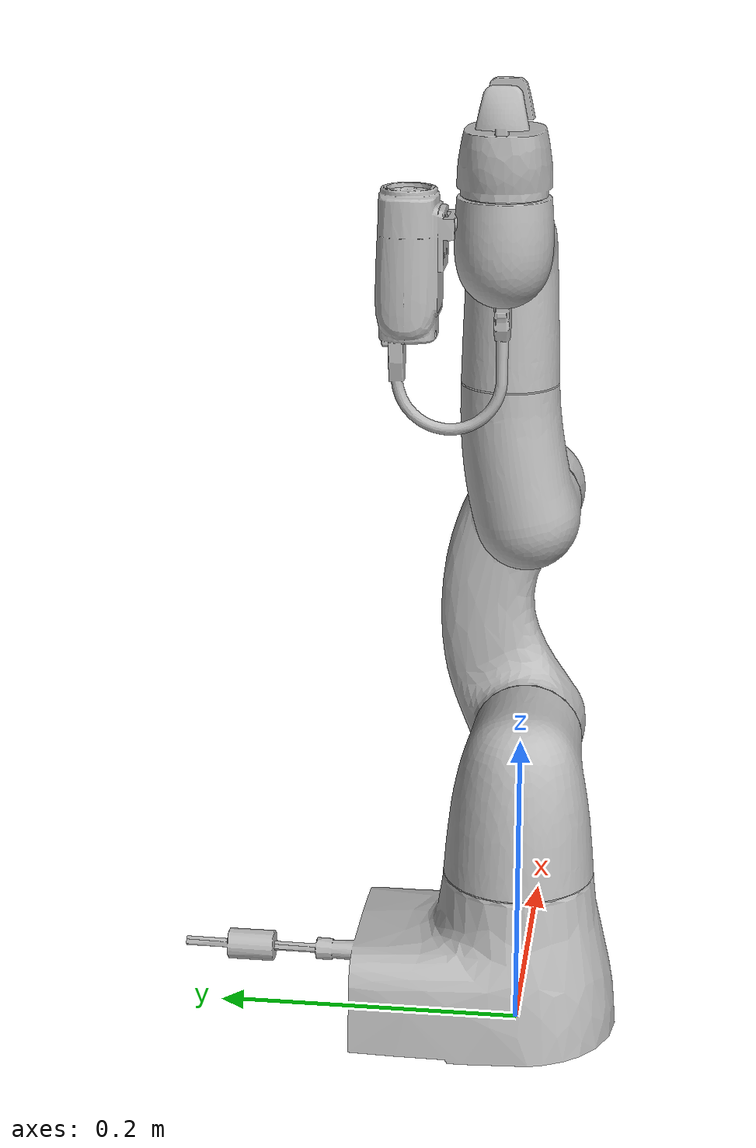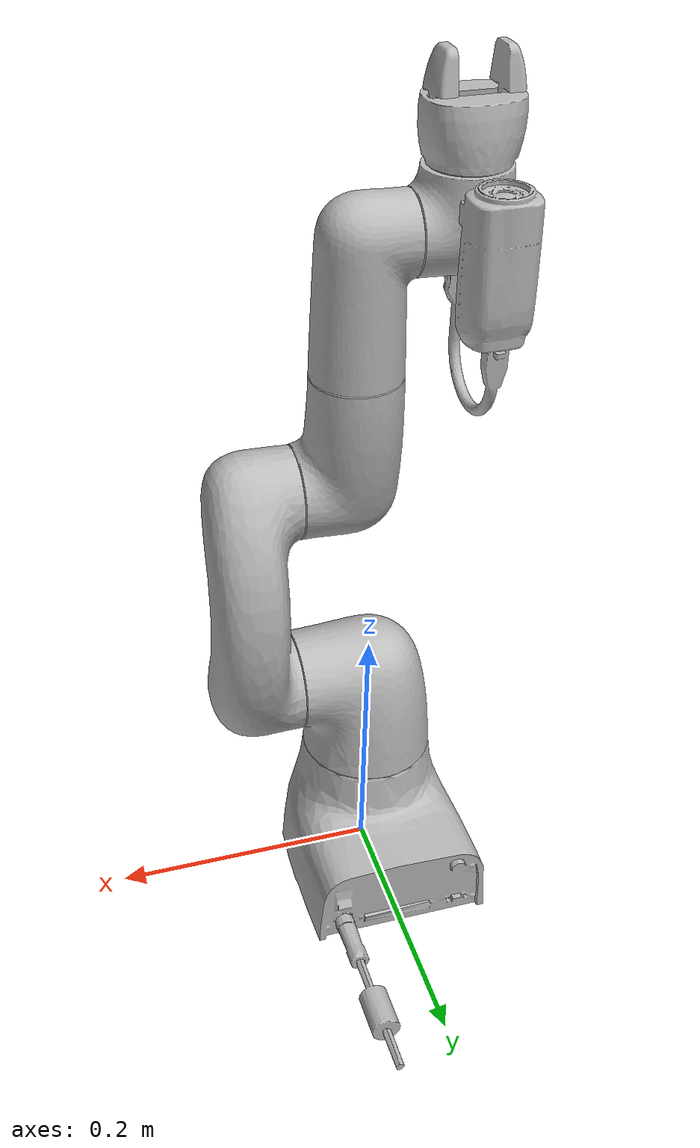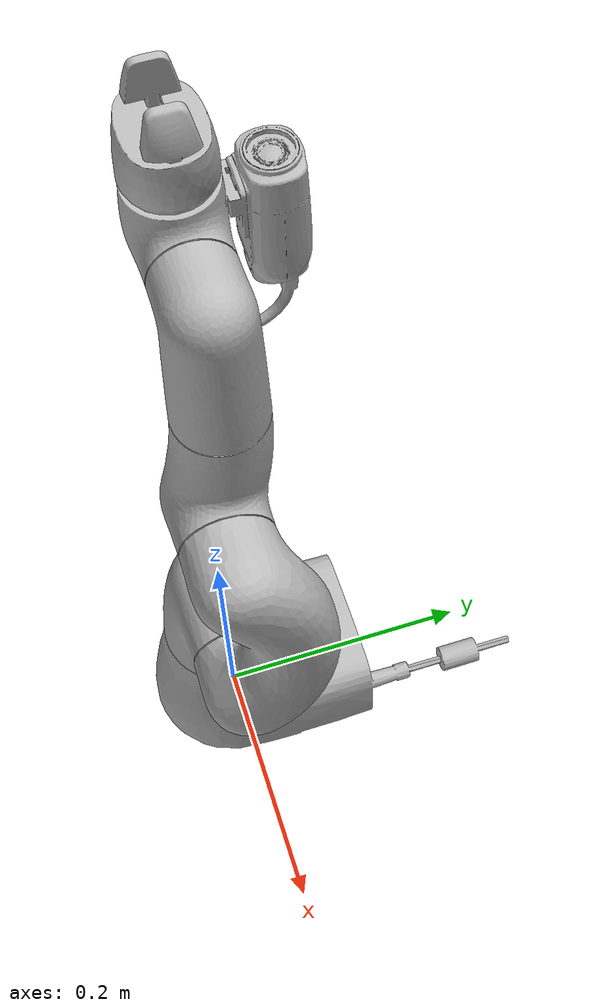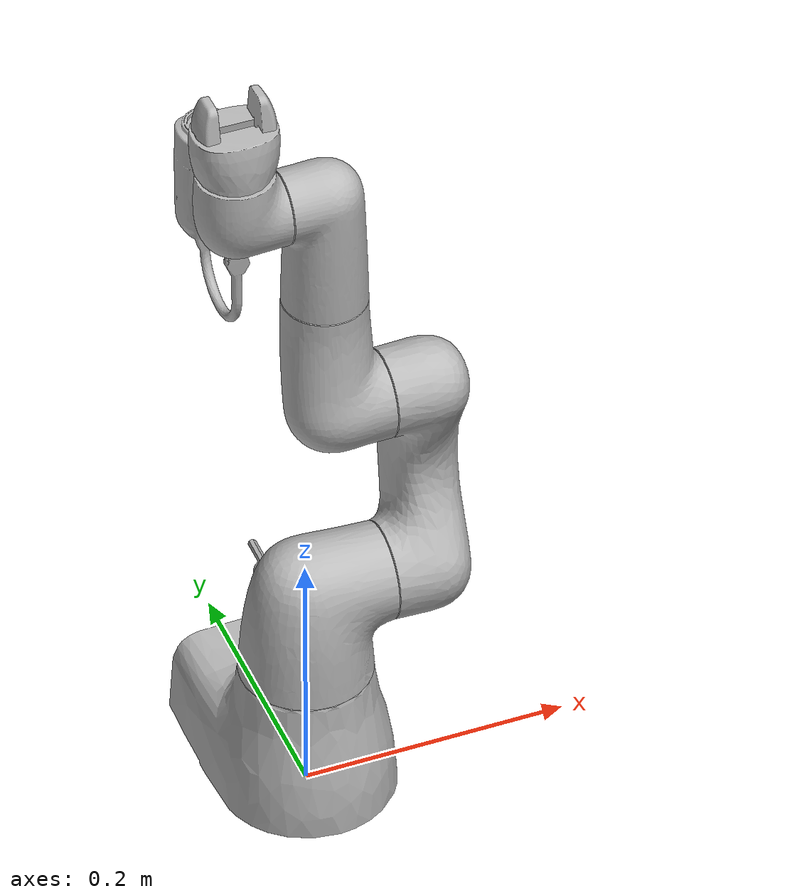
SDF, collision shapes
<?xml version="1.0" ?>
<sdf version='1.11'>
<model name='Cobotta'>
    <!-- * la base è stata fissata al mondo in modo che non possa muoversi -->
    <joint name="base_fixed" type="fixed">
    <parent>world</parent>
    <child>link_root</child>
    </joint>
    <!-- link_root -->
    <link name='link_root'>
        <inertial>
            <pose>0.00056 0.0223 0.04527 0 -0 0</pose>
            <mass>1.5781582461079724</mass>
            <inertia>
                <ixx>0.002994</ixx>
                <ixy>2e-06</ixy>
                <ixz>-0.000325</ixz>
                <iyy>0.004044</iyy>
                <iyz>1e-06</iyz>
                <izz>0.00462</izz>
            </inertia>
        </inertial>
        <collision name='link_root_fixed_joint_lump__base_collision_collision'>
            <pose>0 0 0 1.5708 -0 0</pose>
            <geometry>
            <mesh>
                <uri>file://meshes/coll/base.dae</uri>
                <scale>1 1 1</scale>
            </mesh>
            </geometry>
            <surface>
                <contact>
                    <ode>
                        <kp>1000000.0</kp>
                        <kd>100.0</kd>
                        <max_vel>1.0</max_vel>
                        <min_depth>0.001</min_depth>
                    </ode>
                </contact>
                <friction>
                    <ode>
                        <mu>0.2</mu>
                        <mu2>0.2</mu2>
                    </ode>
                </friction>
            </surface>
        </collision>
        <visual name='link_root_fixed_joint_lump__base_visual'>
            <pose>0 0 0 1.5708 -0 0</pose>
            <geometry>
            <mesh>
                <scale>1 1 1</scale>
                <uri>file://meshes/dae/base.dae</uri>
            </mesh>
            </geometry>
        </visual>
    </link>
    <!-- joint1 -->
    <joint name='joint1' type='revolute'>
    <pose relative_to='link_root'>0 0 0.108 0 -0 0</pose>
    <parent>link_root</parent>
    <child>link_j1</child>
    <axis>
        <xyz>0 0 1</xyz>
        <limit>
            <effort>100</effort>
            <velocity>1.62490153360672</velocity>
            <lower>-2.61799387799149</lower>
            <upper>2.61799387799149</upper>
        </limit>
        <dynamics>
            <spring_reference>0</spring_reference>
            <spring_stiffness>0</spring_stiffness>
            <damping>6.0</damping>
            <friction>0.1</friction>
        </dynamics>
    </axis>
    </joint>
    <!-- link_j1 -->
    <link name='link_j1'>
    <pose relative_to='joint1'>0 0 0 0 -0 0</pose>
    <inertial>
        <pose>0.00668 0 0.04965 0 -0 0</pose>
        <mass>0.7006266882863252</mass>
        <inertia>
            <ixx>0.001062</ixx>
            <ixy>-0.0</ixy>
            <ixz>-0.0</ixz>
            <iyy>0.000935</iyy>
            <iyz>-0.000116</iyz>
            <izz>0.000791</izz>
        </inertia>
    </inertial>
    <collision name='link_j1_fixed_joint_lump__j2_collision_collision'>
        <pose>0 0 -0.108 1.5708 -0 0</pose>
        <geometry>
        <mesh>
            <scale>1 1 1</scale>
            <uri>file://meshes/coll/j2.dae</uri>
        </mesh>
        </geometry>
            <surface>
            <contact>
                <ode>
                    <kp>1000000.0</kp>
                    <kd>100.0</kd>
                    <max_vel>1.0</max_vel>
                    <min_depth>0.001</min_depth>
                </ode>
            </contact>
            <friction>
                <ode>
                    <mu>0.2</mu>
                    <mu2>0.2</mu2>
                </ode>
            </friction>
        </surface>
    </collision>
    <visual name='link_j1_fixed_joint_lump__j2_visual'>
        <pose>0 0 -0.108 1.5708 -0 0</pose>
        <geometry>
        <mesh>
            <scale>1 1 1</scale>
            <uri>file://meshes/dae/j2.dae</uri>
        </mesh>
        </geometry>
    </visual>
    </link>
    <!-- joint2 -->
    <joint name='joint2' type='revolute'>
    <pose relative_to='link_j1'>0.062 0 0.072 3.14159 1.57079 3.14159</pose>
    <parent>link_j1</parent>
    <child>link_j2</child>
    <axis>
        <xyz>0 0 1</xyz>
        <limit>
            <effort>100</effort>
            <velocity>0.759226951263793</velocity>
            <lower>-1.0471975511966</lower>
            <upper>1.74532925199433</upper>
        </limit>
        <dynamics>
            <spring_reference>0</spring_reference>
            <spring_stiffness>0</spring_stiffness>
            <damping>7.0</damping>
            <friction>0.1</friction>
        </dynamics>
    </axis>
    </joint>
    <!-- link_j2 -->
    <link name='link_j2'>
    <pose relative_to='joint2'>0 0 0 0 -0 0</pose>
    <inertial>
        <pose>-0.07592 0.02475 0.03838 0 -0 0</pose>
        <mass>0.7962111154190773</mass>
        <inertia>
            <ixx>0.003728</ixx>
            <ixy>5.6e-05</ixy>
            <ixz>5.4e-05</ixz>
            <iyy>0.003891</iyy>
            <iyz>-3.2e-05</iyz>
            <izz>0.000591</izz>
        </inertia>
    </inertial>
    <collision name='link_j2_fixed_joint_lump__j1Starm_collision_collision'>
        <pose>0.18 0 -0.062 1.5708 -1.5708 0</pose>
        <geometry>
        <mesh>
            <scale>1 1 1</scale>
            <uri>file://meshes/coll/j1Starm.dae</uri>
        </mesh>
        </geometry>
            <surface>
            <contact>
                <ode>
                    <kp>1000000.0</kp>
                    <kd>100.0</kd>
                    <max_vel>1.0</max_vel>
                    <min_depth>0.001</min_depth>
                </ode>
            </contact>
            <friction>
                <ode>
                    <mu>0.2</mu>
                    <mu2>0.2</mu2>
                </ode>
            </friction>
        </surface>
    </collision>
    <visual name='link_j2_fixed_joint_lump__j1Starm_visual'>
        <pose>0.18 0 -0.062 1.5708 -1.5708 0</pose>
        <geometry>
        <mesh>
            <scale>1 1 1</scale>
            <uri>file://meshes/dae/j1Starm.dae</uri>
        </mesh>
        </geometry>
    </visual>
    </link>
    <!-- joint3 -->
    <joint name='joint3' type='revolute'>
    <pose relative_to='link_j2'>-0.165 0 0 3.14159 -0 3.14159</pose>
    <parent>link_j2</parent>
    <child>link_j3</child>
    <axis>
        <xyz>0 0 -1</xyz>
        <limit>
            <effort>100</effort>
            <velocity>1.66187633381022</velocity>
            <lower>0.314159265358979</lower>
            <upper>2.44346095279206</upper>
        </limit>
        <dynamics>
            <spring_reference>0</spring_reference>
            <spring_stiffness>0</spring_stiffness>
            <damping>5.0</damping>
            <friction>0.1</friction>
        </dynamics>
    </axis>
    </joint>
    <!-- link_j3 -->
    <link name='link_j3'>
    <pose relative_to='joint3'>0 0 0 0 0 1.57</pose>
    <inertial>
        <pose>0.00526 -0.02675 0.03861 0 -0 0</pose>
        <mass>0.40840408613020135</mass>
        <inertia>
            <ixx>0.00025</ixx>
            <ixy>4.1e-05</ixy>
            <ixz>-5.9e-05</ixz>
            <iyy>0.00054</iyy>
            <iyz>8e-06</iyz>
            <izz>0.000553</izz>
        </inertia>
    </inertial>
    <collision name='link_j3_fixed_joint_lump__j34_collision_collision'>
        <pose>-0.345 0 0.062 1.5708 1.5708 0</pose>
        <geometry>
        <mesh>
            <scale>1 1 1</scale>
            <uri>file://meshes/coll/j34.dae</uri>
        </mesh>
        </geometry>
            <surface>
            <contact>
                <ode>
                    <kp>1000000.0</kp>
                    <kd>100.0</kd>
                    <max_vel>1.0</max_vel>
                    <min_depth>0.001</min_depth>
                </ode>
            </contact>
            <friction>
                <ode>
                    <mu>0.2</mu>
                    <mu2>0.2</mu2>
                </ode>
            </friction>
        </surface>
    </collision>
    <visual name='link_j3_fixed_joint_lump__j34_visual'>
        <pose>-0.345 0 0.062 1.5708 1.5708 0</pose>
        <geometry>
        <mesh>
            <scale>1 1 1</scale>
            <uri>file://meshes/dae/j34.dae</uri>
        </mesh>
        </geometry>
    </visual>
    </link>
    <!-- joint4 -->
    <joint name='joint4' type='revolute'>
    <pose relative_to='link_j3'>0.012 -0.088 0.042 -1.57079 1.57079 3.14159</pose>
    <parent>link_j3</parent>
    <child>link_j4</child>
    <axis>
        <xyz>0 0 1</xyz>
        <limit>
            <effort>100</effort>
            <velocity>2.5534166956677</velocity>
            <lower>-2.96705972839036</lower>
            <upper>2.96705972839036</upper>
        </limit>
        <dynamics>
            <spring_reference>0</spring_reference>
            <spring_stiffness>0</spring_stiffness>
            <damping>2.0</damping>
            <friction>0.1</friction>
        </dynamics>
    </axis>
    </joint>
    <!-- link_j4 -->
    <link name='link_j4'>
    <pose relative_to='joint4'>0 0 0 0 -0 0</pose>
    <inertial>
        <pose>-0.00143 0 0.05394 0 -0 0</pose>
        <mass>0.30235423023011887</mass>
        <inertia>
            <ixx>0.00013</ixx>
            <ixy>1.8e-05</ixy>
            <ixz>0.0</ixz>
            <iyy>0.00038</iyy>
            <iyz>0.0</iyz>
            <izz>0.000385</izz>
        </inertia>
    </inertial>
    <collision name='link_j4_fixed_joint_lump__j2ndarm_collision_collision'>
        <pose>-0.02 -0.357 -0.088 0 -0 0</pose>
        <geometry>
        <mesh>
            <scale>1 1 1</scale>
            <uri>file://meshes/coll/j2ndarm.dae</uri>
        </mesh>
        </geometry>
        <surface>
            <contact>
                <ode>
                    <kp>1000000.0</kp>
                    <kd>100.0</kd>
                    <max_vel>1.0</max_vel>
                    <min_depth>0.001</min_depth>
                </ode>
            </contact>
            <friction>
                <ode>
                    <mu>0.8</mu>
                    <mu2>0.8</mu2>
                </ode>
            </friction>
        </surface>
    </collision>
    <visual name='link_j4_fixed_joint_lump__j2ndarm_visual'>
        <pose>-0.02 -0.357 -0.088 0 -0 0</pose>
        <geometry>
        <mesh>
            <scale>1 1 1</scale>
            <uri>file://meshes/dae/j2ndarm.dae</uri>
        </mesh>
        </geometry>
    </visual>
    </link>
    <!-- joint5 -->
    <joint name='joint5' type='revolute'>
    <pose relative_to='link_j4'>-0.042 0 0.089 -1.5708 0 1.5708</pose>
    <parent>link_j4</parent>
    <child>link_j5</child>
    <axis>
        <xyz>0 0 -1</xyz>
        <limit>
            <effort>100</effort>
            <velocity>2.66948109092533</velocity>
            <lower>-1.65806278939461</lower>
            <upper>2.35619449019234</upper>
        </limit>
        <dynamics>
            <spring_reference>0</spring_reference>
            <spring_stiffness>0</spring_stiffness>
            <damping>3.0</damping>
            <friction>0.1</friction>
        </dynamics>
    </axis>
    </joint>
    <!-- link_j5 -->
    <link name='link_j5'>
    <pose relative_to='joint5'>0 0 0 0 -0 0</pose>
    <inertial>
        <pose>-0.0001 -0.0084 0.01804 0 -0 0</pose>
        <mass>0.17118402548820483</mass>
        <inertia>
            <ixx>9.5e-05</ixx>
            <ixy>-0.0</ixy>
            <ixz>-0.0</ixz>
            <iyy>8.2e-05</iyy>
            <iyz>-8e-06</iyz>
            <izz>8e-05</izz>
        </inertia>
    </inertial>
    <collision name='link_j5_fixed_joint_lump__j6_collision_collision'>
        <pose>-0.357 0.177 -0.022 1.5708 1.5708 0</pose>
        <geometry>
        <mesh>
            <scale>1 1 1</scale>
            <uri>file://meshes/coll/j6.dae</uri>
        </mesh>
        </geometry>
            <surface>
            <contact>
                <ode>
                    <kp>1000000.0</kp>
                    <kd>100.0</kd>
                    <max_vel>1.0</max_vel>
                    <min_depth>0.001</min_depth>
                </ode>
            </contact>
            <friction>
                <ode>
                    <mu>0.2</mu>
                    <mu2>0.2</mu2>
                </ode>
            </friction>
        </surface>
    </collision>
    <visual name='link_j5_fixed_joint_lump__j6_visual'>
        <pose>-0.357 0.177 -0.022 1.5708 1.5708 0</pose>
        <geometry>
        <mesh>
            <scale>1 1 1</scale>
            <uri>file://meshes/dae/j6.dae</uri>
        </mesh>
        </geometry>
    </visual>
    <collision name='link_j5_fixed_joint_lump__CAMERA_SET2_ASM_collision_collision'>
        <pose>-0.357 0.177 -0.021999 1.5708 1.5708 0</pose>
        <geometry>
        <mesh>
            <scale>1 1 1</scale>
            <uri>file://meshes/coll/CAMERA_SET2_ASM.dae</uri>
        </mesh>
        </geometry>
        <surface>
            <contact>
                <ode>
                    <kp>1000000.0</kp>
                    <kd>100.0</kd>
                    <max_vel>1.0</max_vel>
                    <min_depth>0.001</min_depth>
                </ode>
            </contact>
            <friction>
                <ode>
                    <mu>0.5</mu>
                    <mu2>0.5</mu2>
                </ode>
            </friction>
        </surface>
    </collision>
    <visual name='link_j5_fixed_joint_lump__CAMERA_SET2_ASM_visual_1'>
        <pose>-0.357 0.177 -0.021999 1.5708 1.5708 0</pose>
        <geometry>
        <mesh>
            <scale>1 1 1</scale>
            <uri>file://meshes/dae/CAMERA_SET2_ASM.dae</uri>
        </mesh>
        </geometry>
    </visual>

    <!-- Questa parte di codice puo' essere utilizzata per visualizzare la posizione del sensore. -->

    <!-- sensore camera -->

    </link>
    <!-- joint6 -->
    <joint name='joint6' type='revolute'>
    <pose relative_to='link_j5'>0 -0.04 0.0225 -1.57079 1.57079 3.14159</pose>
    <parent>link_j5</parent>
    <child>link_j6</child>
    <axis>
        <xyz>0 0 1</xyz>
        <limit>
            <effort>100</effort>
            <velocity>3.83012504350156</velocity>
            <lower>-2.96705972839036</lower>
            <upper>2.96705972839036</upper>
        </limit>
        <dynamics>
            <spring_reference>0</spring_reference>
            <spring_stiffness>0</spring_stiffness>
            <damping>3.0</damping>
            <friction>0.1</friction>
        </dynamics>
    </axis>
    </joint>
    <!-- link_j6 -->
    <link name='link_j6'>
    <pose relative_to='joint6'>0 0 0 0 -0 0</pose>
    <inertial>
        <pose>-0.0005 0 0.02106 0 -0 0</pose>
        <mass>0.0873043297858215</mass>
        <inertia>
            <ixx>2.9e-05</ixx>
            <ixy>-0.0</ixy>
            <ixz>0.0</ixz>
            <iyy>2.5e-05</iyy>
            <iyz>0.0</iyz>
            <izz>3.8e-05</izz>
        </inertia>
    </inertial>
    <collision name='link_j6_fixed_joint_lump__hand_collision_collision'>
        <pose>-0.0005 0 0.001 0 -0 0</pose>
        <geometry>
        <mesh>
            <scale>1 1 1</scale>
            <uri>file://meshes/coll/hand.dae</uri>
        </mesh>
        </geometry>
            <surface>
            <contact>
                <ode>
                    <kp>1000000.0</kp>
                    <kd>100.0</kd>
                    <max_vel>1.0</max_vel>
                    <min_depth>0.001</min_depth>
                </ode>
            </contact>
            <friction>
                <ode>
                    <mu>0.2</mu>
                    <mu2>0.2</mu2>
                </ode>
            </friction>
        </surface>
    </collision>
    <visual name='link_j6_fixed_joint_lump__hand_visual'>
        <pose>-0.0005 0 0.001 0 -0 0</pose>
        <geometry>
        <mesh>
            <scale>1 1 1</scale>
            <uri>file://meshes/dae/hand.dae</uri>
        </mesh>
        </geometry>
    </visual>
    </link>
    <!-- joint_left -->
    <joint name='joint_left' type='prismatic'>
    <pose relative_to='link_j6'>0.0145 0 0.0625 -1.5708 -0 -1.5708</pose>
    <parent>link_j6</parent>
    <child>link_gripper_r</child>
    <axis>
        <xyz>0 0 1</xyz>
        <limit>
            <lower>-0.015</lower>
            <upper>0</upper>
            <effort>500</effort>
            <velocity>0.5</velocity>
        </limit>
        <dynamics>
            <spring_reference>0</spring_reference>
            <spring_stiffness>0</spring_stiffness>
            <damping>1.0</damping>
            <friction>0.4</friction>
        </dynamics>
    </axis>
    </joint>
    <!-- link_gripper_r -->
    <link name='link_gripper_r'>
    <pose relative_to='joint_left'>0 0 0 0 -0 0</pose>
    <inertial>
        <pose>0 0.01369 0.00538 0 -0 0</pose>
        <mass>0.00661512964737902</mass>
        <inertia>
            <ixx>0.001</ixx>
            <ixy>0</ixy>
            <ixz>0</ixz>
            <iyy>0.001</iyy>
            <iyz>0</iyz>
            <izz>0.001</izz>
        </inertia>
    </inertial>
    <collision name='link_gripper_r_fixed_joint_lump__hand_f_collision_collision'>
        <pose>0 0.0595 -0.015 1.5708 -1.5708 0</pose>
        <geometry>
        <mesh>
            <scale>1 1 1</scale>
            <uri>file://meshes/coll/hand_f.dae</uri>
        </mesh>
        </geometry>
            <surface>
            <contact>
                <ode>
                    <kp>10000000.0</kp>
                    <kd>10000.0</kd>
                    <max_vel>1.0</max_vel>
                    <min_depth>0.002</min_depth>
                </ode>
            </contact>
            <friction>
                <ode>
                    <mu>5.0</mu>
                    <mu2>5.0</mu2>
                </ode>
            </friction>
        </surface>
    </collision>
    <visual name='link_gripper_r_fixed_joint_lump__hand_f_visual'>
        <pose>0 0.0595 -0.015 1.5708 -1.5708 0</pose>
        <geometry>
        <mesh>
            <scale>1 1 1</scale>
            <uri>file://meshes/dae/hand_f.dae</uri>
        </mesh>
        </geometry>
    </visual>
    <self_collide>1</self_collide>
    </link>
    <!-- joint_right -->
    <joint name='joint_right' type='prismatic'>
    <pose relative_to='link_j6'>-0.0155 0 0.062 -1.5708 0 1.5708</pose>
    <parent>link_j6</parent>
    <child>link_gripper_l</child>
    <axis>
        <xyz>0 0 1</xyz>
        <limit>
            <lower>-0.015</lower>
            <upper>-0.0</upper>
            <effort>500</effort>  <!-- Aumentato da 100 per grip molto più forte -->
            <velocity>0.5</velocity>
        </limit>
        <dynamics>
            <spring_reference>0</spring_reference>
            <spring_stiffness>0</spring_stiffness>
            <damping>1.0</damping>
            <friction>0.4</friction>
        </dynamics>
    </axis>
    </joint>
    <!-- link_gripper_l -->
    <link name='link_gripper_l'>
    <pose relative_to='joint_right'>0 0 0 0 -0 0</pose>
    <inertial>
        <pose>0 0.01319 0.00538 0 -0 0</pose>
        <mass>0.00661512964737902</mass>
        <inertia>
            <ixx>0.001</ixx>
            <ixy>0</ixy>
            <ixz>0</ixz>
            <iyy>0.001</iyy>
            <iyz>0</iyz>
            <izz>0.001</izz>
        </inertia>
    </inertial>
    <collision name='link_gripper_l_fixed_joint_lump__hand_f2_collision_collision'>
        <pose>0 0.059 -0.015 1.5708 1.5708 0</pose>
        <geometry>
        <mesh>
            <scale>1 1 1</scale>
            <uri>file://meshes/coll/hand_f2.dae</uri>
        </mesh>
        </geometry>
            <surface>
            <contact>
                <ode>
                    <kp>10000000.0</kp>  <!-- Aumentato per contatto più rigido -->
                    <kd>10000.0</kd>  <!-- Aumentato per stabilità -->
                    <max_vel>1.0</max_vel>  <!-- Aumentato per risposta veloce -->
                    <min_depth>0.002</min_depth>  <!-- Aumentato per contatto profondo -->
                </ode>
            </contact>
            <friction>
                <ode>
                    <mu>5.0</mu>
                    <mu2>5.0</mu2>
                </ode>
            </friction>
        </surface>
    </collision>
    <visual name='link_gripper_l_fixed_joint_lump__hand_f2_visual'>
        <pose>0 0.059 -0.015 1.5708 1.5708 0</pose>
        <geometry>
        <mesh>
            <scale>1 1 1</scale>
            <uri>file://meshes/dae/hand_f2.dae</uri>
        </mesh>
        </geometry>
    </visual>
    <self_collide>1</self_collide>
    </link>
        <!-- Applicazione plugin a ogni joint per permettere il funzionamento del controller-->
        <plugin filename="gz-sim-joint-position-controller-system" name="gz::sim::systems::JointPositionController">
            <joint_name>joint1</joint_name>
            <topic>/model/Cobotta/joint/joint1/0/cmd_pos</topic>
            <p_gain>5000</p_gain>
            <i_gain>100</i_gain>
            <d_gain>200</d_gain>
            <i_min>-100</i_min>
            <i_max>100</i_max>
        </plugin>
        <plugin filename="gz-sim-joint-position-controller-system" name="gz::sim::systems::JointPositionController">
            <joint_name>joint2</joint_name>
            <topic>/model/Cobotta/joint/joint2/0/cmd_pos</topic>
            <p_gain>5000</p_gain>
            <i_gain>100</i_gain>
            <d_gain>200</d_gain>
            <i_min>-100</i_min>
            <i_max>100</i_max>
        </plugin>
        <plugin filename="gz-sim-joint-position-controller-system" name="gz::sim::systems::JointPositionController">
            <joint_name>joint3</joint_name>
            <topic>/model/Cobotta/joint/joint3/0/cmd_pos</topic>
            <p_gain>5000</p_gain>
            <i_gain>100</i_gain>
            <d_gain>200</d_gain>
            <i_min>-100</i_min>
            <i_max>100</i_max>
        </plugin>
        <plugin filename="gz-sim-joint-position-controller-system" name="gz::sim::systems::JointPositionController">
            <joint_name>joint4</joint_name>
            <topic>/model/Cobotta/joint/joint4/0/cmd_pos</topic>
            <p_gain>5000</p_gain>
            <i_gain>100</i_gain>
            <d_gain>200</d_gain>
            <i_min>-100</i_min>
            <i_max>100</i_max>
        </plugin>
        <plugin filename="gz-sim-joint-position-controller-system" name="gz::sim::systems::JointPositionController">
            <joint_name>joint5</joint_name>
            <topic>/model/Cobotta/joint/joint5/0/cmd_pos</topic>
            <p_gain>5000</p_gain>
            <i_gain>100</i_gain>
            <d_gain>200</d_gain>
            <i_min>-100</i_min>
            <i_max>100</i_max>
        </plugin>
        <plugin filename="gz-sim-joint-position-controller-system" name="gz::sim::systems::JointPositionController">
            <joint_name>joint6</joint_name>
            <topic>/model/Cobotta/joint/joint6/0/cmd_pos</topic>
            <p_gain>5000</p_gain>
            <i_gain>100</i_gain>
            <d_gain>200</d_gain>
            <i_min>-100</i_min>
            <i_max>100</i_max>
        </plugin>
        <plugin filename="gz-sim-joint-position-controller-system" name="gz::sim::systems::JointPositionController">
            <joint_name>joint_left</joint_name>
            <topic>/model/Cobotta/joint/joint_left/0/cmd_pos</topic>
            <p_gain>2000</p_gain>
            <i_gain>5</i_gain>
            <d_gain>5</d_gain>
            <i_min>-10</i_min>
            <i_max>10</i_max>
        </plugin>
        <plugin filename="gz-sim-joint-position-controller-system" name="gz::sim::systems::JointPositionController">
            <joint_name>joint_right</joint_name>
            <topic>/model/Cobotta/joint/joint_right/0/cmd_pos</topic>
            <p_gain>2000</p_gain>
            <i_gain>5</i_gain>
            <d_gain>5</d_gain>
            <i_min>-10</i_min>
            <i_max>10</i_max>
        </plugin>

    <!-- applicazione del plugin per la visualizzazione della posizione dei joint tramite topic-->
        <plugin filename="gz-sim-joint-state-publisher-system"
                name="gz::sim::systems::JointStatePublisher">
            <topic>joint_states</topic>
        </plugin>

        <plugin filename="gz-sim-detachable-joint-system"
                name="gz::sim::systems::DetachableJoint">
            <parent_link>link_j6</parent_link>
            <child_model>object</child_model>
            <child_link>link</child_link>
            <attach_topic>/model/Cobotta/detachable_joint/attach</attach_topic>
            <detach_topic>/model/Cobotta/detachable_joint/detach</detach_topic>
            <output_topic>/model/Cobotta/detachable_joint/state</output_topic>
            <suppress_child_warning>true</suppress_child_warning>
        </plugin>
</model>
</sdf>
